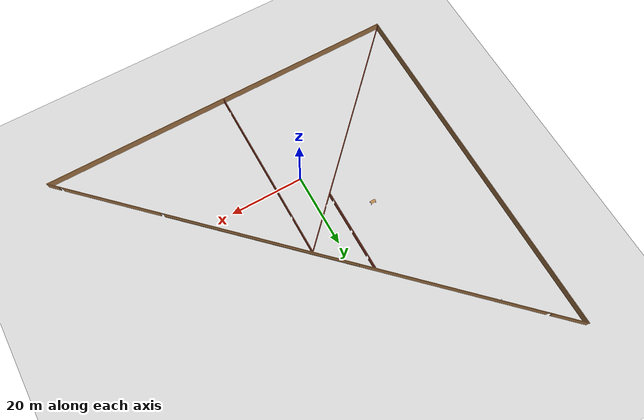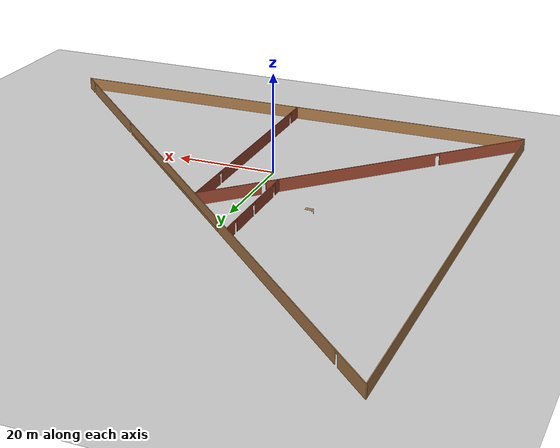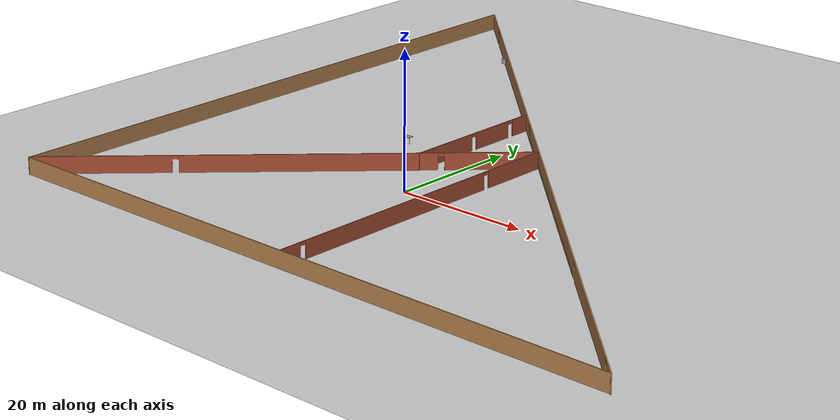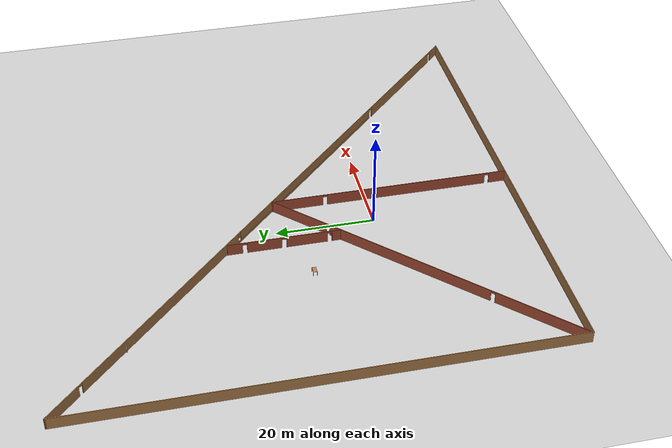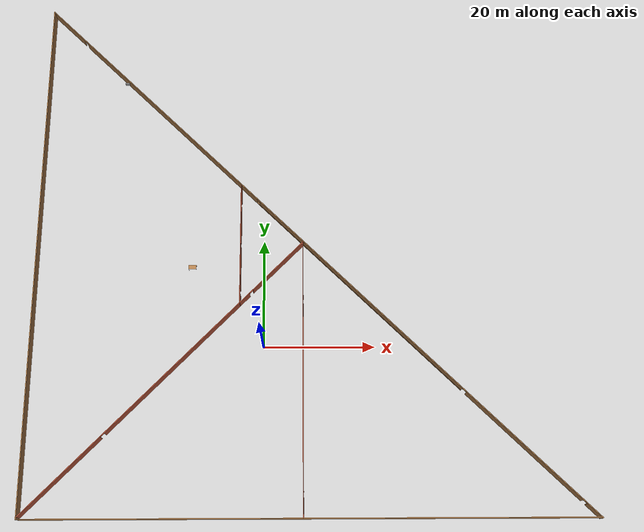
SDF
<sdf version="1.6">
 <world name="default">
  <model name="ground_plane">
   <static>1</static>
   <link name="link">
    <collision name="collision">
     <geometry><plane><normal>0 0 1</normal><size>100 100</size></plane></geometry>
     <surface><friction><ode><mu>100</mu><mu2>50</mu2></ode></friction></surface>
    </collision>
    <visual name="visual">
     <cast_shadows>0</cast_shadows>
     <geometry><plane><normal>0 0 1</normal><size>100 100</size></plane></geometry>
     <material>
      <script><uri>file://media/materials/scripts/gazebo.material</uri><name>Gazebo/Grey</name></script>
     </material>
    </visual>
   </link>
  </model>
  <model name="Building">
   <pose>8.1557 18.4087 0 0 -0 0</pose>
   <link name="Wall_1">
    <collision name="Wall_1_Collision">
     <geometry><box><size>96.8752 0.15 2.5</size></box></geometry>
     <pose>0 0 1.25 0 -0 0</pose>
    </collision>
    <visual name="Wall_1_Visual">
     <pose>0 0 1.25 0 -0 0</pose>
     <geometry><box><size>96.8752 0.15 2.5</size></box></geometry>
     <material>
      <script><uri>file://media/materials/scripts/gazebo.material</uri><name>Gazebo/Wood</name></script>
      <ambient>1 0.764706 0.305882 1</ambient>
     </material>
    </visual>
    <pose>-49.9405 -0.078415 0 0 -0 1.56903</pose>
   </link>
   <link name="Wall_15">
    <pose>-25.4387 -23.6088 0 0 -0 0.785398</pose>
    <visual name="Wall_15_Visual_0">
     <pose>-25.0598 0 1.25 0 -0 0</pose>
     <geometry><box><size>19.1305 0.15 2.5</size></box></geometry>
     <material>
      <script><uri>file://media/materials/scripts/gazebo.material</uri><name>Gazebo/Bricks</name></script>
      <ambient>1 1 1 1</ambient>
     </material>
    </visual>
    <collision name="Wall_15_Collision_0">
     <geometry><box><size>19.1305 0.15 2.5</size></box></geometry>
     <pose>-25.0598 0 1.25 0 -0 0</pose>
    </collision>
    <visual name="Wall_15_Visual_1">
     <pose>3.11936 0 1.25 0 -0 0</pose>
     <geometry><box><size>35.4277 0.15 2.5</size></box></geometry>
     <material>
      <script><uri>file://media/materials/scripts/gazebo.material</uri><name>Gazebo/Bricks</name></script>
      <ambient>1 1 1 1</ambient>
     </material>
    </visual>
    <collision name="Wall_15_Collision_1">
     <geometry><box><size>35.4277 0.15 2.5</size></box></geometry>
     <pose>3.11936 0 1.25 0 -0 0</pose>
    </collision>
    <visual name="Wall_15_Visual_2">
     <pose>28.1791 0 1.25 0 -0 0</pose>
     <geometry><box><size>12.8918 0.15 2.5</size></box></geometry>
     <material>
      <script><uri>file://media/materials/scripts/gazebo.material</uri><name>Gazebo/Bricks</name></script>
      <ambient>1 1 1 1</ambient>
     </material>
    </visual>
    <collision name="Wall_15_Collision_2">
     <geometry><box><size>12.8918 0.15 2.5</size></box></geometry>
     <pose>28.1791 0 1.25 0 -0 0</pose>
    </collision>
    <visual name="Wall_15_Visual_3">
     <pose>-15.0445 0 2.25 0 -0 0</pose>
     <geometry><box><size>0.9 0.15 0.5</size></box></geometry>
     <material>
      <script><uri>file://media/materials/scripts/gazebo.material</uri><name>Gazebo/Bricks</name></script>
      <ambient>1 1 1 1</ambient>
     </material>
    </visual>
    <collision name="Wall_15_Collision_3">
     <geometry><box><size>0.9 0.15 0.5</size></box></geometry>
     <pose>-15.0445 0 2.25 0 -0 0</pose>
    </collision>
    <visual name="Wall_15_Visual_4">
     <pose>21.2832 0 2.25 0 -0 0</pose>
     <geometry><box><size>0.9 0.15 0.5</size></box></geometry>
     <material>
      <script><uri>file://media/materials/scripts/gazebo.material</uri><name>Gazebo/Bricks</name></script>
      <ambient>1 1 1 1</ambient>
     </material>
    </visual>
    <collision name="Wall_15_Collision_4">
     <geometry><box><size>0.9 0.15 0.5</size></box></geometry>
     <pose>21.2832 0 2.25 0 -0 0</pose>
    </collision>
   </link>
   <link name="Wall_17">
    <pose>-1.03505 -23.7009 0 0 0 -1.5708</pose>
    <visual name="Wall_17_Visual_0">
     <pose>-19.4576 0 1.25 0 -0 0</pose>
     <geometry><box><size>10.5847 0.15 2.5</size></box></geometry>
     <material>
      <script><uri>file://media/materials/scripts/gazebo.material</uri><name>Gazebo/Bricks</name></script>
      <ambient>1 1 1 1</ambient>
     </material>
    </visual>
    <collision name="Wall_17_Collision_0">
     <geometry><box><size>10.5847 0.15 2.5</size></box></geometry>
     <pose>-19.4576 0 1.25 0 -0 0</pose>
    </collision>
    <visual name="Wall_17_Visual_1">
     <pose>3.52788 0 1.25 0 -0 0</pose>
     <geometry><box><size>33.5863 0.15 2.5</size></box></geometry>
     <material>
      <script><uri>file://media/materials/scripts/gazebo.material</uri><name>Gazebo/Bricks</name></script>
      <ambient>1 1 1 1</ambient>
     </material>
    </visual>
    <collision name="Wall_17_Collision_1">
     <geometry><box><size>33.5863 0.15 2.5</size></box></geometry>
     <pose>3.52788 0 1.25 0 -0 0</pose>
    </collision>
    <visual name="Wall_17_Visual_2">
     <pose>22.9855 0 1.25 0 -0 0</pose>
     <geometry><box><size>3.52897 0.15 2.5</size></box></geometry>
     <material>
      <script><uri>file://media/materials/scripts/gazebo.material</uri><name>Gazebo/Bricks</name></script>
      <ambient>1 1 1 1</ambient>
     </material>
    </visual>
    <collision name="Wall_17_Collision_2">
     <geometry><box><size>3.52897 0.15 2.5</size></box></geometry>
     <pose>22.9855 0 1.25 0 -0 0</pose>
    </collision>
    <visual name="Wall_17_Visual_3">
     <pose>-13.7153 0 2.25 0 -0 0</pose>
     <geometry><box><size>0.9 0.15 0.5</size></box></geometry>
     <material>
      <script><uri>file://media/materials/scripts/gazebo.material</uri><name>Gazebo/Bricks</name></script>
      <ambient>1 1 1 1</ambient>
     </material>
    </visual>
    <collision name="Wall_17_Collision_3">
     <geometry><box><size>0.9 0.15 0.5</size></box></geometry>
     <pose>-13.7153 0 2.25 0 -0 0</pose>
    </collision>
    <visual name="Wall_17_Visual_4">
     <pose>20.771 0 2.25 0 -0 0</pose>
     <geometry><box><size>0.9 0.15 0.5</size></box></geometry>
     <material>
      <script><uri>file://media/materials/scripts/gazebo.material</uri><name>Gazebo/Bricks</name></script>
      <ambient>1 1 1 1</ambient>
     </material>
    </visual>
    <collision name="Wall_17_Collision_4">
     <geometry><box><size>0.9 0.15 0.5</size></box></geometry>
     <pose>20.771 0 2.25 0 -0 0</pose>
    </collision>
   </link>
   <link name="Wall_3">
    <pose>0.069793 1e-06 0 0 0 -0.771261</pose>
    <visual name="Wall_3_Visual_0">
     <pose>-65.3239 0 1.25 0 -0 0</pose>
     <geometry><box><size>8.75684 0.15 2.5</size></box></geometry>
     <material>
      <script><uri>file://media/materials/scripts/gazebo.material</uri><name>Gazebo/Wood</name></script>
      <ambient>1 0.764706 0.305882 1</ambient>
     </material>
    </visual>
    <collision name="Wall_3_Collision_0">
     <geometry><box><size>8.75684 0.15 2.5</size></box></geometry>
     <pose>-65.3239 0 1.25 0 -0 0</pose>
    </collision>
    <visual name="Wall_3_Visual_1">
     <pose>-36.7119 0 1.25 0 -0 0</pose>
     <geometry><box><size>46.6672 0.15 2.5</size></box></geometry>
     <material>
      <script><uri>file://media/materials/scripts/gazebo.material</uri><name>Gazebo/Wood</name></script>
      <ambient>1 0.764706 0.305882 1</ambient>
     </material>
    </visual>
    <collision name="Wall_3_Collision_1">
     <geometry><box><size>46.6672 0.15 2.5</size></box></geometry>
     <pose>-36.7119 0 1.25 0 -0 0</pose>
    </collision>
    <visual name="Wall_3_Visual_2">
     <pose>51.9944 0 1.25 0 -0 0</pose>
     <geometry><box><size>26.7455 0.15 2.5</size></box></geometry>
     <material>
      <script><uri>file://media/materials/scripts/gazebo.material</uri><name>Gazebo/Wood</name></script>
      <ambient>1 0.764706 0.305882 1</ambient>
     </material>
    </visual>
    <collision name="Wall_3_Collision_2">
     <geometry><box><size>26.7455 0.15 2.5</size></box></geometry>
     <pose>51.9944 0 1.25 0 -0 0</pose>
    </collision>
    <visual name="Wall_3_Visual_3">
     <pose>67.9847 0 1.25 0 -0 0</pose>
     <geometry><box><size>3.43514 0.15 2.5</size></box></geometry>
     <material>
      <script><uri>file://media/materials/scripts/gazebo.material</uri><name>Gazebo/Wood</name></script>
      <ambient>1 0.764706 0.305882 1</ambient>
     </material>
    </visual>
    <collision name="Wall_3_Collision_3">
     <geometry><box><size>3.43514 0.15 2.5</size></box></geometry>
     <pose>67.9847 0 1.25 0 -0 0</pose>
    </collision>
    <visual name="Wall_3_Visual_4">
     <pose>12.1717 0 0.25 0 -0 0</pose>
     <geometry><box><size>51.0999 0.15 0.5</size></box></geometry>
     <material>
      <script><uri>file://media/materials/scripts/gazebo.material</uri><name>Gazebo/Wood</name></script>
      <ambient>1 0.764706 0.305882 1</ambient>
     </material>
    </visual>
    <collision name="Wall_3_Collision_4">
     <geometry><box><size>51.0999 0.15 0.5</size></box></geometry>
     <pose>12.1717 0 0.25 0 -0 0</pose>
    </collision>
    <visual name="Wall_3_Visual_5">
     <pose>12.5717 0 1.5 0 -0 0</pose>
     <geometry><box><size>50.2999 0.15 2</size></box></geometry>
     <material>
      <script><uri>file://media/materials/scripts/gazebo.material</uri><name>Gazebo/Wood</name></script>
      <ambient>1 0.764706 0.305882 1</ambient>
     </material>
    </visual>
    <collision name="Wall_3_Collision_5">
     <geometry><box><size>50.2999 0.15 2</size></box></geometry>
     <pose>12.5717 0 1.5 0 -0 0</pose>
    </collision>
    <visual name="Wall_3_Visual_6">
     <pose>-12.9783 0 1.9 0 -0 0</pose>
     <geometry><box><size>0.8 0.15 1.2</size></box></geometry>
     <material>
      <script><uri>file://media/materials/scripts/gazebo.material</uri><name>Gazebo/Wood</name></script>
      <ambient>1 0.764706 0.305882 1</ambient>
     </material>
    </visual>
    <collision name="Wall_3_Collision_6">
     <geometry><box><size>0.8 0.15 1.2</size></box></geometry>
     <pose>-12.9783 0 1.9 0 -0 0</pose>
    </collision>
    <visual name="Wall_3_Visual_7">
     <pose>-60.4954 0 2.25 0 -0 0</pose>
     <geometry><box><size>0.9 0.15 0.5</size></box></geometry>
     <material>
      <script><uri>file://media/materials/scripts/gazebo.material</uri><name>Gazebo/Wood</name></script>
      <ambient>1 0.764706 0.305882 1</ambient>
     </material>
    </visual>
    <collision name="Wall_3_Collision_7">
     <geometry><box><size>0.9 0.15 0.5</size></box></geometry>
     <pose>-60.4954 0 2.25 0 -0 0</pose>
    </collision>
    <visual name="Wall_3_Visual_8">
     <pose>65.8171 0 2.25 0 -0 0</pose>
     <geometry><box><size>0.9 0.15 0.5</size></box></geometry>
     <material>
      <script><uri>file://media/materials/scripts/gazebo.material</uri><name>Gazebo/Wood</name></script>
      <ambient>1 0.764706 0.305882 1</ambient>
     </material>
    </visual>
    <collision name="Wall_3_Collision_8">
     <geometry><box><size>0.9 0.15 0.5</size></box></geometry>
     <pose>65.8171 0 2.25 0 -0 0</pose>
    </collision>
    <visual name="Wall_3_Visual_9">
     <pose>38.1716 0 2.25 0 -0 0</pose>
     <geometry><box><size>0.9 0.15 0.5</size></box></geometry>
     <material>
      <script><uri>file://media/materials/scripts/gazebo.material</uri><name>Gazebo/Wood</name></script>
      <ambient>1 0.764706 0.305882 1</ambient>
     </material>
    </visual>
    <collision name="Wall_3_Collision_9">
     <geometry><box><size>0.9 0.15 0.5</size></box></geometry>
     <pose>38.1716 0 2.25 0 -0 0</pose>
    </collision>
   </link>
   <link name="Wall_5">
    <collision name="Wall_5_Collision">
     <geometry><box><size>100 0.15 2.5</size></box></geometry>
     <pose>0 0 1.25 0 -0 0</pose>
    </collision>
    <visual name="Wall_5_Visual">
     <pose>0 0 1.25 0 -0 0</pose>
     <geometry><box><size>100 0.15 2.5</size></box></geometry>
     <material>
      <script><uri>file://media/materials/scripts/gazebo.material</uri><name>Gazebo/Wood</name></script>
      <ambient>1 0.764706 0.305882 1</ambient>
     </material>
    </visual>
    <pose>-0.100561 -48.4411 0 0 0 -4e-06</pose>
   </link>
   <link name="Window_1">
    <collision name="Window_1_Collision">
     <geometry><box><size>0.8 0.17 0.8</size></box></geometry>
     <pose>0 0 0.4 0 -0 0</pose>
    </collision>
    <visual name="Window_1_Visual">
     <pose>0 0 0.4 0 -0 0</pose>
     <geometry><box><size>0.8 0.17 0.8</size></box></geometry>
     <material>
      <script><uri>file://media/materials/scripts/gazebo.material</uri><name>Gazebo/Grey</name></script>
     </material>
    </visual>
    <pose>-34.9574 33.5803 0.5 0 -0 0</pose>
   </link>
   <static>1</static>
  </model>
  <model name="table_clone_1">
   <static>0</static>
   <link name="link">
    <collision name="surface">
     <pose>0 0 1 0 -0 0</pose>
     <geometry><box><size>1.5 0.8 0.03</size></box></geometry>
     <surface><friction><ode><mu>0.6</mu><mu2>0.6</mu2></ode></friction></surface>
    </collision>
    <visual name="visual1">
     <pose>0 0 1 0 -0 0</pose>
     <geometry><box><size>1.4 0.8 0.04</size></box></geometry>
     <material>
      <script><uri>file://media/materials/scripts/gazebo.material</uri><name>Gazebo/Wood</name></script>
     </material>
    </visual>
    <collision name="front_left_leg">
     <pose>0.68 0.38 0.5 0 -0 0</pose>
     <geometry><cylinder><radius>0.02</radius><length>1</length></cylinder></geometry>
    </collision>
    <visual name="front_left_leg">
     <pose>0.68 0.38 0.5 0 -0 0</pose>
     <geometry><cylinder><radius>0.02</radius><length>1</length></cylinder></geometry>
     <material>
      <script><uri>file://media/materials/scripts/gazebo.material</uri><name>Gazebo/Grey</name></script>
     </material>
    </visual>
    <collision name="front_right_leg">
     <pose>0.68 -0.38 0.5 0 -0 0</pose>
     <geometry><cylinder><radius>0.02</radius><length>1</length></cylinder></geometry>
    </collision>
    <visual name="front_right_leg">
     <pose>0.68 -0.38 0.5 0 -0 0</pose>
     <geometry><cylinder><radius>0.02</radius><length>1</length></cylinder></geometry>
     <material>
      <script><uri>file://media/materials/scripts/gazebo.material</uri><name>Gazebo/Grey</name></script>
     </material>
    </visual>
    <collision name="back_right_leg">
     <pose>-0.68 -0.38 0.5 0 -0 0</pose>
     <geometry><cylinder><radius>0.02</radius><length>1</length></cylinder></geometry>
    </collision>
    <visual name="back_right_leg">
     <pose>-0.68 -0.38 0.5 0 -0 0</pose>
     <geometry><cylinder><radius>0.02</radius><length>1</length></cylinder></geometry>
     <material>
      <script><uri>file://media/materials/scripts/gazebo.material</uri><name>Gazebo/Grey</name></script>
     </material>
    </visual>
    <collision name="back_left_leg">
     <pose>-0.68 0.38 0.5 0 -0 0</pose>
     <geometry><cylinder><radius>0.02</radius><length>1</length></cylinder></geometry>
    </collision>
    <visual name="back_left_leg">
     <pose>-0.68 0.38 0.5 0 -0 0</pose>
     <geometry><cylinder><radius>0.02</radius><length>1</length></cylinder></geometry>
     <material>
      <script><uri>file://media/materials/scripts/gazebo.material</uri><name>Gazebo/Grey</name></script>
     </material>
    </visual>
    <inertial>
     <inertia><ixx>1</ixx><ixy>0</ixy><ixz>0</ixz><iyy>1</iyy><iyz>0</iyz><izz>1</izz></inertia>
     <mass>1</mass>
    </inertial>
   </link>
   <pose>-13.1803 14.9305 -2e-06 0 -0 0</pose>
  </model>
  <model name="wall">
   <pose>-4.33429 19.0122 0 0 -0 0</pose>
   <link name="Wall_0">
    <pose>0 0 0 0 0 -1.5708</pose>
    <visual name="Wall_0_Visual_0">
     <pose>-9.8496 0 1.25 0 -0 0</pose>
     <geometry><box><size>3.05079 0.15 2.5</size></box></geometry>
     <material>
      <script><uri>file://media/materials/scripts/gazebo.material</uri><name>Gazebo/Bricks</name></script>
      <ambient>0.435294 0.796078 0.67451 1</ambient>
     </material>
    </visual>
    <collision name="Wall_0_Collision_0">
     <geometry><box><size>3.05079 0.15 2.5</size></box></geometry>
     <pose>-9.8496 0 1.25 0 -0 0</pose>
    </collision>
    <visual name="Wall_0_Visual_1">
     <pose>-3.96842 0 1.25 0 -0 0</pose>
     <geometry><box><size>6.91158 0.15 2.5</size></box></geometry>
     <material>
      <script><uri>file://media/materials/scripts/gazebo.material</uri><name>Gazebo/Bricks</name></script>
      <ambient>0.435294 0.796078 0.67451 1</ambient>
     </material>
    </visual>
    <collision name="Wall_0_Collision_1">
     <geometry><box><size>6.91158 0.15 2.5</size></box></geometry>
     <pose>-3.96842 0 1.25 0 -0 0</pose>
    </collision>
    <visual name="Wall_0_Visual_2">
     <pose>4.46676 0 1.25 0 -0 0</pose>
     <geometry><box><size>8.15878 0.15 2.5</size></box></geometry>
     <material>
      <script><uri>file://media/materials/scripts/gazebo.material</uri><name>Gazebo/Bricks</name></script>
      <ambient>0.435294 0.796078 0.67451 1</ambient>
     </material>
    </visual>
    <collision name="Wall_0_Collision_2">
     <geometry><box><size>8.15878 0.15 2.5</size></box></geometry>
     <pose>4.46676 0 1.25 0 -0 0</pose>
    </collision>
    <visual name="Wall_0_Visual_3">
     <pose>10.4106 0 1.25 0 -0 0</pose>
     <geometry><box><size>1.92885 0.15 2.5</size></box></geometry>
     <material>
      <script><uri>file://media/materials/scripts/gazebo.material</uri><name>Gazebo/Bricks</name></script>
      <ambient>0.435294 0.796078 0.67451 1</ambient>
     </material>
    </visual>
    <collision name="Wall_0_Collision_3">
     <geometry><box><size>1.92885 0.15 2.5</size></box></geometry>
     <pose>10.4106 0 1.25 0 -0 0</pose>
    </collision>
    <visual name="Wall_0_Visual_4">
     <pose>-7.87421 0 2.25 0 -0 0</pose>
     <geometry><box><size>0.9 0.15 0.5</size></box></geometry>
     <material>
      <script><uri>file://media/materials/scripts/gazebo.material</uri><name>Gazebo/Bricks</name></script>
      <ambient>0.435294 0.796078 0.67451 1</ambient>
     </material>
    </visual>
    <collision name="Wall_0_Collision_4">
     <geometry><box><size>0.9 0.15 0.5</size></box></geometry>
     <pose>-7.87421 0 2.25 0 -0 0</pose>
    </collision>
    <visual name="Wall_0_Visual_5">
     <pose>-0.06263 0 2.25 0 -0 0</pose>
     <geometry><box><size>0.9 0.15 0.5</size></box></geometry>
     <material>
      <script><uri>file://media/materials/scripts/gazebo.material</uri><name>Gazebo/Bricks</name></script>
      <ambient>0.435294 0.796078 0.67451 1</ambient>
     </material>
    </visual>
    <collision name="Wall_0_Collision_5">
     <geometry><box><size>0.9 0.15 0.5</size></box></geometry>
     <pose>-0.06263 0 2.25 0 -0 0</pose>
    </collision>
    <visual name="Wall_0_Visual_6">
     <pose>8.99615 0 2.25 0 -0 0</pose>
     <geometry><box><size>0.9 0.15 0.5</size></box></geometry>
     <material>
      <script><uri>file://media/materials/scripts/gazebo.material</uri><name>Gazebo/Bricks</name></script>
      <ambient>0.435294 0.796078 0.67451 1</ambient>
     </material>
    </visual>
    <collision name="Wall_0_Collision_6">
     <geometry><box><size>0.9 0.15 0.5</size></box></geometry>
     <pose>8.99615 0 2.25 0 -0 0</pose>
    </collision>
   </link>
   <static>1</static>
  </model>
 </world>
</sdf>
